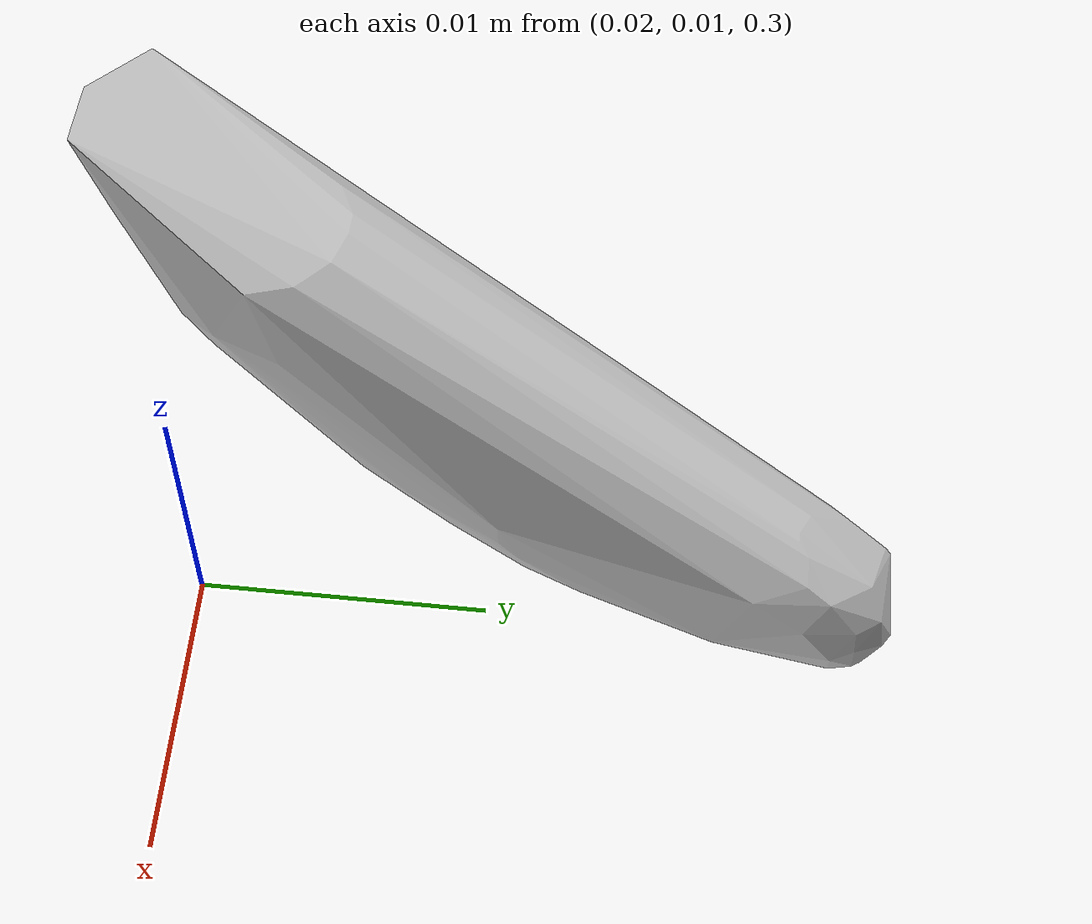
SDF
<?xml version="1.0"?>
<sdf version="1.7">
  <model name="vascular_partexport062">
    <link name="vascular_partexport062_body">
      <visual name="vascular_partexport062_visual">
        <geometry>
          <mesh>
            <uri>vascular_partexport062.obj</uri>
          </mesh>
        </geometry>
      </visual>
      <collision name="vascular_partexport062_collision">
        <geometry>
          <mesh>
            <uri>vascular_partexport062.obj</uri>
          </mesh>
        </geometry>
      </collision>
    </link>
    <frame name="vascular_partexport062_center">
      <pose relative_to="vascular_partexport062_body">0 0 0 0 0 0</pose>
    </frame>
  </model>
</sdf>
